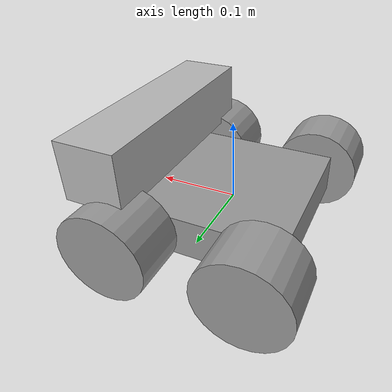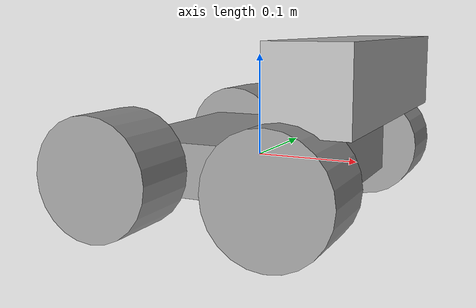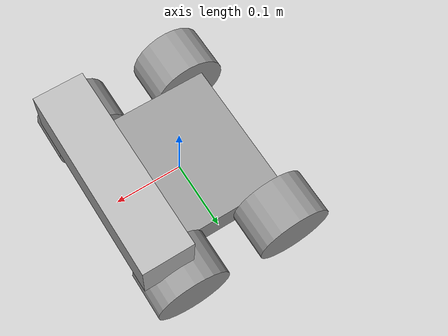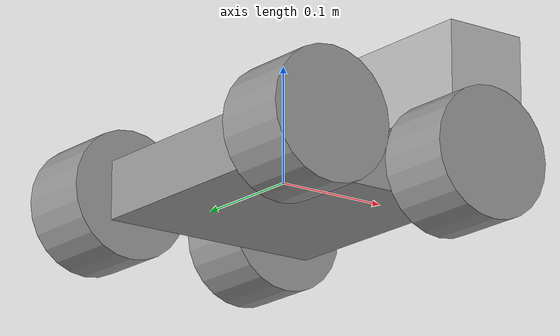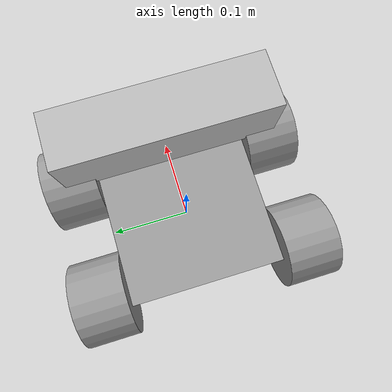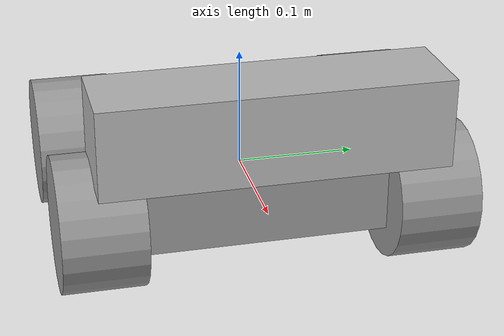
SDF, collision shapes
<?xml version='1.0'?>
<sdf version='1.6'>
  <model name='saboteador'>
    <static>false</static>

    <link name='chassis'>
      <pose frame=''>0 0 -0 0 -0 0</pose>
      <inertial>
        <mass>1</mass>
        <inertia>
          <ixx>0.166667</ixx>
          <ixy>0</ixy>
          <ixz>0</ixz>
          <iyy>0.166667</iyy>
          <iyz>0</iyz>
          <izz>0.166667</izz>
        </inertia>
        <pose frame=''>0 0 0 0 -0 0</pose>
      </inertial>
      <gravity>1</gravity>
      <self_collide>0</self_collide>
      <kinematic>0</kinematic>
      <visual name='visual'>
        <pose frame=''>0 0 0 0 -0 0</pose>
        <geometry>
          <box>
            <size>0.2 0.2 0.05</size>
          </box>
        </geometry>
        <material>
          <lighting>1</lighting>
          <script>
            <uri>file://media/materials/scripts/gazebo.material</uri>
            <name>Gazebo/Grey</name>
          </script>
          <ambient>0.3 0.3 0.3 1</ambient>
          <diffuse>0.7 0.7 0.7 1</diffuse>
          <specular>0.01 0.01 0.01 1</specular>
          <emissive>0 0 0 1</emissive>
          <shader type='vertex'>
            <normal_map>__default__</normal_map>
          </shader>
        </material>
        <cast_shadows>1</cast_shadows>
        <transparency>0</transparency>
      </visual>
      <collision name='collision'>
        <laser_retro>0</laser_retro>
        <max_contacts>10</max_contacts>
        <pose frame=''>0 0 0 0 -0 0</pose>
        <geometry>
          <box>
            <size>0.2 0.2 0.05</size>
          </box>
        </geometry>
        <surface>
          <friction>
            <ode>
              <mu>1</mu>
              <mu2>1</mu2>
              <fdir1>0 0 0</fdir1>
              <slip1>0</slip1>
              <slip2>0</slip2>
            </ode>
            <torsional>
              <coefficient>1</coefficient>
              <patch_radius>0</patch_radius>
              <surface_radius>0</surface_radius>
              <use_patch_radius>1</use_patch_radius>
              <ode>
                <slip>0</slip>
              </ode>
            </torsional>
          </friction>
          <bounce>
            <restitution_coefficient>0</restitution_coefficient>
            <threshold>1e+06</threshold>
          </bounce>
          <contact>
            <collide_without_contact>0</collide_without_contact>
            <collide_without_contact_bitmask>1</collide_without_contact_bitmask>
            <collide_bitmask>1</collide_bitmask>
            <ode>
              <soft_cfm>0</soft_cfm>
              <soft_erp>0.2</soft_erp>
              <kp>1e+13</kp>
              <kd>1</kd>
              <max_vel>0.01</max_vel>
              <min_depth>0</min_depth>
            </ode>
            <bullet>
              <split_impulse>1</split_impulse>
              <split_impulse_penetration_threshold>-0.01</split_impulse_penetration_threshold>
              <soft_cfm>0</soft_cfm>
              <soft_erp>0.2</soft_erp>
              <kp>1e+13</kp>
              <kd>1</kd>
            </bullet>
          </contact>
        </surface>
      </collision>
    </link>

    <link name='wheel_front_left'>
      <pose frame=''>0.08 0.133544 -0 1.57 -0 0</pose>
      <inertial>
        <mass>1</mass>
        <inertia>
          <ixx>0.145833</ixx>
          <ixy>0</ixy>
          <ixz>0</ixz>
          <iyy>0.145833</iyy>
          <iyz>0</iyz>
          <izz>0.125</izz>
        </inertia>
        <pose frame=''>0 0 0 0 -0 0</pose>
      </inertial>
      <gravity>1</gravity>
      <self_collide>0</self_collide>
      <kinematic>0</kinematic>
      <visual name='visual'>
        <pose frame=''>0 0 0 0 -0 0</pose>
        <geometry>
          <cylinder>
            <radius>0.055</radius>
            <length>0.067</length>
          </cylinder>
        </geometry>
        <material>
          <lighting>1</lighting>
          <script>
            <uri>file://media/materials/scripts/gazebo.material</uri>
            <name>Gazebo/Grey</name>
          </script>
          <ambient>0.3 0.3 0.3 1</ambient>
          <diffuse>0.7 0.7 0.7 1</diffuse>
          <specular>0.01 0.01 0.01 1</specular>
          <emissive>0 0 0 1</emissive>
          <shader type='vertex'>
            <normal_map>__default__</normal_map>
          </shader>
        </material>
        <cast_shadows>1</cast_shadows>
        <transparency>0</transparency>
      </visual>
      <collision name='collision'>
        <laser_retro>0</laser_retro>
        <max_contacts>10</max_contacts>
        <pose frame=''>0 0 0 0 -0 0</pose>
        <geometry>
          <cylinder>
            <radius>0.055</radius>
            <length>0.067</length>
          </cylinder>
        </geometry>
        <surface>
          <friction>
            <ode>
              <mu>1</mu>
              <mu2>1</mu2>
              <fdir1>0 0 0</fdir1>
              <slip1>0</slip1>
              <slip2>0</slip2>
            </ode>
            <torsional>
              <coefficient>1</coefficient>
              <patch_radius>0</patch_radius>
              <surface_radius>0</surface_radius>
              <use_patch_radius>1</use_patch_radius>
              <ode>
                <slip>0</slip>
              </ode>
            </torsional>
          </friction>
          <bounce>
            <restitution_coefficient>0</restitution_coefficient>
            <threshold>1e+06</threshold>
          </bounce>
          <contact>
            <collide_without_contact>0</collide_without_contact>
            <collide_without_contact_bitmask>1</collide_without_contact_bitmask>
            <collide_bitmask>1</collide_bitmask>
            <ode>
              <soft_cfm>0</soft_cfm>
              <soft_erp>0.2</soft_erp>
              <kp>1e+13</kp>
              <kd>1</kd>
              <max_vel>0.01</max_vel>
              <min_depth>0</min_depth>
            </ode>
            <bullet>
              <split_impulse>1</split_impulse>
              <split_impulse_penetration_threshold>-0.01</split_impulse_penetration_threshold>
              <soft_cfm>0</soft_cfm>
              <soft_erp>0.2</soft_erp>
              <kp>1e+13</kp>
              <kd>1</kd>
            </bullet>
          </contact>
        </surface>
      </collision>
    </link>

    <link name='wheel_front_right'>
      <pose frame=''>0.08 -0.133544 -0 1.57 -0 0</pose>
      <inertial>
        <mass>1</mass>
        <inertia>
          <ixx>0.145833</ixx>
          <ixy>0</ixy>
          <ixz>0</ixz>
          <iyy>0.145833</iyy>
          <iyz>0</iyz>
          <izz>0.125</izz>
        </inertia>
        <pose frame=''>0 0 0 0 -0 0</pose>
      </inertial>
      <self_collide>0</self_collide>
      <kinematic>0</kinematic>
      <gravity>1</gravity>
      <visual name='visual'>
        <pose frame=''>0 0 0 0 -0 0</pose>
        <geometry>
          <cylinder>
            <radius>0.055</radius>
            <length>0.067</length>
          </cylinder>
        </geometry>
        <material>
          <lighting>1</lighting>
          <script>
            <uri>file://media/materials/scripts/gazebo.material</uri>
            <name>Gazebo/Grey</name>
          </script>
          <ambient>0.3 0.3 0.3 1</ambient>
          <diffuse>0.7 0.7 0.7 1</diffuse>
          <specular>0.01 0.01 0.01 1</specular>
          <emissive>0 0 0 1</emissive>
          <shader type='vertex'>
            <normal_map>__default__</normal_map>
          </shader>
        </material>
        <cast_shadows>1</cast_shadows>
        <transparency>0</transparency>
      </visual>
      <collision name='collision'>
        <laser_retro>0</laser_retro>
        <max_contacts>10</max_contacts>
        <pose frame=''>0 0 0 0 -0 0</pose>
        <geometry>
          <cylinder>
            <radius>0.055</radius>
            <length>0.067</length>
          </cylinder>
        </geometry>
        <surface>
          <friction>
            <ode>
              <mu>1</mu>
              <mu2>1</mu2>
              <fdir1>0 0 0</fdir1>
              <slip1>0</slip1>
              <slip2>0</slip2>
            </ode>
            <torsional>
              <coefficient>1</coefficient>
              <patch_radius>0</patch_radius>
              <surface_radius>0</surface_radius>
              <use_patch_radius>1</use_patch_radius>
              <ode>
                <slip>0</slip>
              </ode>
            </torsional>
          </friction>
          <bounce>
            <restitution_coefficient>0</restitution_coefficient>
            <threshold>1e+06</threshold>
          </bounce>
          <contact>
            <collide_without_contact>0</collide_without_contact>
            <collide_without_contact_bitmask>1</collide_without_contact_bitmask>
            <collide_bitmask>1</collide_bitmask>
            <ode>
              <soft_cfm>0</soft_cfm>
              <soft_erp>0.2</soft_erp>
              <kp>1e+13</kp>
              <kd>1</kd>
              <max_vel>0.01</max_vel>
              <min_depth>0</min_depth>
            </ode>
            <bullet>
              <split_impulse>1</split_impulse>
              <split_impulse_penetration_threshold>-0.01</split_impulse_penetration_threshold>
              <soft_cfm>0</soft_cfm>
              <soft_erp>0.2</soft_erp>
              <kp>1e+13</kp>
              <kd>1</kd>
            </bullet>
          </contact>
        </surface>
      </collision>
    </link>

    <link name='wheel_back_left'>
      <pose frame=''>-0.08 0.133544 -0 1.57 -0 0</pose>
      <inertial>
        <mass>1</mass>
        <inertia>
          <ixx>0.145833</ixx>
          <ixy>0</ixy>
          <ixz>0</ixz>
          <iyy>0.145833</iyy>
          <iyz>0</iyz>
          <izz>0.125</izz>
        </inertia>
        <pose frame=''>0 0 0 0 -0 0</pose>
      </inertial>
      <self_collide>0</self_collide>
      <kinematic>0</kinematic>
      <gravity>1</gravity>
      <visual name='visual'>
        <pose frame=''>0 0 0 0 -0 0</pose>
        <geometry>
          <cylinder>
            <radius>0.055</radius>
            <length>0.067</length>
          </cylinder>
        </geometry>
        <material>
          <lighting>1</lighting>
          <script>
            <uri>file://media/materials/scripts/gazebo.material</uri>
            <name>Gazebo/Grey</name>
          </script>
          <ambient>0.3 0.3 0.3 1</ambient>
          <diffuse>0.7 0.7 0.7 1</diffuse>
          <specular>0.01 0.01 0.01 1</specular>
          <emissive>0 0 0 1</emissive>
          <shader type='vertex'>
            <normal_map>__default__</normal_map>
          </shader>
        </material>
        <cast_shadows>1</cast_shadows>
        <transparency>0</transparency>
      </visual>
      <collision name='collision'>
        <laser_retro>0</laser_retro>
        <max_contacts>10</max_contacts>
        <pose frame=''>0 0 0 0 -0 0</pose>
        <geometry>
          <cylinder>
            <radius>0.055</radius>
            <length>0.067</length>
          </cylinder>
        </geometry>
        <surface>
          <friction>
            <ode>
              <mu>1</mu>
              <mu2>1</mu2>
              <fdir1>0 0 0</fdir1>
              <slip1>0</slip1>
              <slip2>0</slip2>
            </ode>
            <torsional>
              <coefficient>1</coefficient>
              <patch_radius>0</patch_radius>
              <surface_radius>0</surface_radius>
              <use_patch_radius>1</use_patch_radius>
              <ode>
                <slip>0</slip>
              </ode>
            </torsional>
          </friction>
          <bounce>
            <restitution_coefficient>0</restitution_coefficient>
            <threshold>1e+06</threshold>
          </bounce>
          <contact>
            <collide_without_contact>0</collide_without_contact>
            <collide_without_contact_bitmask>1</collide_without_contact_bitmask>
            <collide_bitmask>1</collide_bitmask>
            <ode>
              <soft_cfm>0</soft_cfm>
              <soft_erp>0.2</soft_erp>
              <kp>1e+13</kp>
              <kd>1</kd>
              <max_vel>0.01</max_vel>
              <min_depth>0</min_depth>
            </ode>
            <bullet>
              <split_impulse>1</split_impulse>
              <split_impulse_penetration_threshold>-0.01</split_impulse_penetration_threshold>
              <soft_cfm>0</soft_cfm>
              <soft_erp>0.2</soft_erp>
              <kp>1e+13</kp>
              <kd>1</kd>
            </bullet>
          </contact>
        </surface>
      </collision>
    </link>

    <link name='wheel_back_right'>
      <pose frame=''>-0.08 -0.133544 -0 1.57 -0 0</pose>
      <inertial>
        <mass>1</mass>
        <inertia>
          <ixx>0.145833</ixx>
          <ixy>0</ixy>
          <ixz>0</ixz>
          <iyy>0.145833</iyy>
          <iyz>0</iyz>
          <izz>0.125</izz>
        </inertia>
        <pose frame=''>0 0 0 0 -0 0</pose>
      </inertial>
      <self_collide>0</self_collide>
      <kinematic>0</kinematic>
      <gravity>1</gravity>
      <visual name='visual'>
        <pose frame=''>0 0 0 0 -0 0</pose>
        <geometry>
          <cylinder>
            <radius>0.055</radius>
            <length>0.067</length>
          </cylinder>
        </geometry>
        <material>
          <lighting>1</lighting>
          <script>
            <uri>file://media/materials/scripts/gazebo.material</uri>
            <name>Gazebo/Grey</name>
          </script>
          <ambient>0.3 0.3 0.3 1</ambient>
          <diffuse>0.7 0.7 0.7 1</diffuse>
          <specular>0.01 0.01 0.01 1</specular>
          <emissive>0 0 0 1</emissive>
          <shader type='vertex'>
            <normal_map>__default__</normal_map>
          </shader>
        </material>
        <cast_shadows>1</cast_shadows>
        <transparency>0</transparency>
      </visual>
      <collision name='collision'>
        <laser_retro>0</laser_retro>
        <max_contacts>10</max_contacts>
        <pose frame=''>0 0 0 0 -0 0</pose>
        <geometry>
          <cylinder>
            <radius>0.055</radius>
            <length>0.067</length>
          </cylinder>
        </geometry>
        <surface>
          <friction>
            <ode>
              <mu>1</mu>
              <mu2>1</mu2>
              <fdir1>0 0 0</fdir1>
              <slip1>0</slip1>
              <slip2>0</slip2>
            </ode>
            <torsional>
              <coefficient>1</coefficient>
              <patch_radius>0</patch_radius>
              <surface_radius>0</surface_radius>
              <use_patch_radius>1</use_patch_radius>
              <ode>
                <slip>0</slip>
              </ode>
            </torsional>
          </friction>
          <bounce>
            <restitution_coefficient>0</restitution_coefficient>
            <threshold>1e+06</threshold>
          </bounce>
          <contact>
            <collide_without_contact>0</collide_without_contact>
            <collide_without_contact_bitmask>1</collide_without_contact_bitmask>
            <collide_bitmask>1</collide_bitmask>
            <ode>
              <soft_cfm>0</soft_cfm>
              <soft_erp>0.2</soft_erp>
              <kp>1e+13</kp>
              <kd>1</kd>
              <max_vel>0.01</max_vel>
              <min_depth>0</min_depth>
            </ode>
            <bullet>
              <split_impulse>1</split_impulse>
              <split_impulse_penetration_threshold>-0.01</split_impulse_penetration_threshold>
              <soft_cfm>0</soft_cfm>
              <soft_erp>0.2</soft_erp>
              <kp>1e+13</kp>
              <kd>1</kd>
            </bullet>
          </contact>
        </surface>
      </collision>
    </link>

    <joint name='joint_front_left' type='revolute'>
      <parent>chassis</parent>
      <child>wheel_front_left</child>
      <pose frame=''>0 0 0 0 -0 0</pose>
      <axis>
        <xyz>0 0 -1</xyz>
        <use_parent_model_frame>0</use_parent_model_frame>
        <limit>
          <lower>-1.79769e+308</lower>
          <upper>1.79769e+308</upper>
          <effort>-1</effort>
          <velocity>-1</velocity>
        </limit>
        <dynamics>
          <spring_reference>0</spring_reference>
          <spring_stiffness>0</spring_stiffness>
          <damping>0</damping>
        </dynamics>
      </axis>
      <physics>
        <ode>
          <limit>
            <cfm>0</cfm>
            <erp>0.2</erp>
          </limit>
          <suspension>
            <cfm>0</cfm>
            <erp>0.2</erp>
          </suspension>
        </ode>
      </physics>
    </joint>

    <joint name='joint_front_right' type='revolute'>
      <parent>chassis</parent>
      <child>wheel_front_right</child>
      <pose frame=''>0 0 0 0 -0 0</pose>
      <axis>
        <xyz>0 0 -1</xyz>
        <use_parent_model_frame>0</use_parent_model_frame>
        <limit>
          <lower>-1.79769e+308</lower>
          <upper>1.79769e+308</upper>
          <effort>-1</effort>
          <velocity>-1</velocity>
        </limit>
        <dynamics>
          <spring_reference>0</spring_reference>
          <spring_stiffness>0</spring_stiffness>
          <damping>0</damping>
        </dynamics>
      </axis>
      <physics>
        <ode>
          <limit>
            <cfm>0</cfm>
            <erp>0.2</erp>
          </limit>
          <suspension>
            <cfm>0</cfm>
            <erp>0.2</erp>
          </suspension>
        </ode>
      </physics>
    </joint>

    <joint name='joint_back_left' type='revolute'>
      <parent>chassis</parent>
      <child>wheel_back_left</child>
      <pose frame=''>0 0 0 0 -0 0</pose>
      <axis>
        <xyz>0 0 -1</xyz>
        <use_parent_model_frame>0</use_parent_model_frame>
        <limit>
          <lower>-1.79769e+308</lower>
          <upper>1.79769e+308</upper>
          <effort>-1</effort>
          <velocity>-1</velocity>
        </limit>
        <dynamics>
          <spring_reference>0</spring_reference>
          <spring_stiffness>0</spring_stiffness>
          <damping>0</damping>
          <friction>0</friction>
        </dynamics>
      </axis>
      <physics>
        <ode>
          <limit>
            <cfm>0</cfm>
            <erp>0.2</erp>
          </limit>
          <suspension>
            <cfm>0</cfm>
            <erp>0.2</erp>
          </suspension>
        </ode>
      </physics>
    </joint>

    <joint name='joint_back_right' type='revolute'>
      <parent>chassis</parent>
      <child>wheel_back_right</child>
      <pose frame=''>0 0 0 0 -0 0</pose>
      <axis>
        <xyz>0 0 -1</xyz>
        <use_parent_model_frame>0</use_parent_model_frame>
        <limit>
          <lower>-1.79769e+308</lower>
          <upper>1.79769e+308</upper>
          <effort>-1</effort>
          <velocity>-1</velocity>
        </limit>
        <dynamics>
          <spring_reference>0</spring_reference>
          <spring_stiffness>0</spring_stiffness>
          <damping>0</damping>
        </dynamics>
      </axis>
      <physics>
        <ode>
          <limit>
            <cfm>0</cfm>
            <erp>0.2</erp>
          </limit>
          <suspension>
            <cfm>0</cfm>
            <erp>0.2</erp>
          </suspension>
        </ode>
      </physics>
    </joint>

    <include>
      <uri>model://kinect</uri>
      <pose>0.1 0 0.08 0 0 0</pose>
    </include>
    <joint name="kinect_joint" type="fixed">
      <child>kinect::link</child>
      <parent>chassis</parent>
    </joint>

      <plugin name="differential_drive_controller" filename="libgazebo_ros_diff_drive.so">
         <alwaysOn>true</alwaysOn>
         <updateRate>20</updateRate>
         <leftJoint>joint_back_left</leftJoint>
         <rightJoint>joint_back_right</rightJoint>
         <wheelSeparation>0.4</wheelSeparation>
         <wheelDiameter>0.1</wheelDiameter>
         <wheelTorque>20</wheelTorque>
         <commandTopic>cmd_vel</commandTopic>
         <odometryTopic>odom</odometryTopic>
         <odometryFrame>odom</odometryFrame>
         <publishTf>1</publishTf>
         <publishWheelJointState>true</publishWheelJointState>
         <robotBaseFrame>base_footprint</robotBaseFrame>
      </plugin>

  </model>

</sdf>

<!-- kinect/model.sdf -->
<sdf version="1.5">
  <model name="kinect">
    <pose>0 0 0.036 0 0 0</pose>
    <link name="link">
      <inertial>
        <mass>0.1</mass>
      </inertial>
      <collision name="collision">
        <geometry>
          <box>
            <size>0.073000 0.276000 0.072000</size>
          </box>
        </geometry>
      </collision>
      <visual name="visual">
        <geometry>
          <mesh>
            <uri>model://../model_source/models/kinect/meshes/kinect.dae</uri>
          </mesh>
        </geometry>
      </visual>
      <sensor name="camera" type="depth">
        <update_rate>20</update_rate>
        <camera>
          <horizontal_fov>1.047198</horizontal_fov>
          <image>
            <width>640</width>
            <height>480</height>
            <format>R8G8B8</format>
          </image>
          <clip>
            <near>0.05</near>
            <far>3</far>
          </clip>
        </camera>
      </sensor>
    </link>
  </model>
</sdf>
